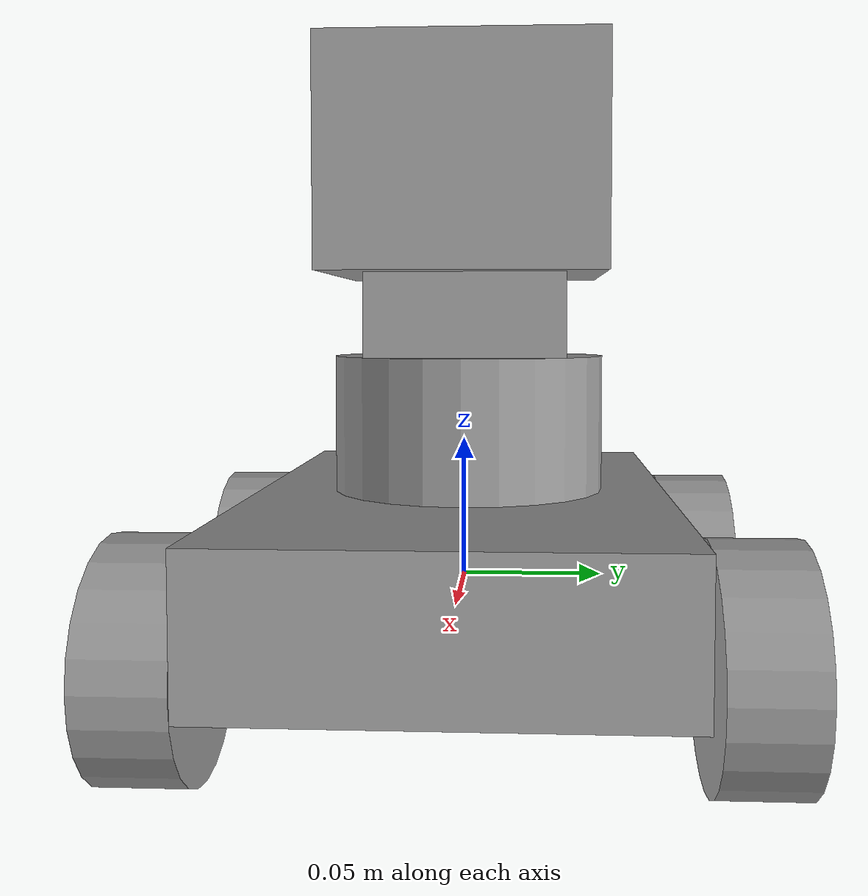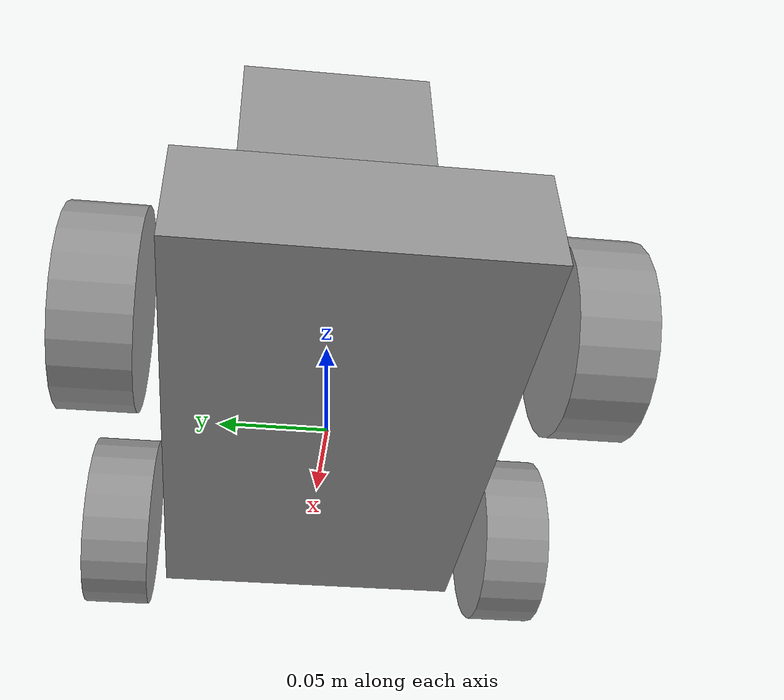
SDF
<?xml version='1.0'?>
<sdf version='1.5'>
  <model name='bfl_10'>
    <link name='link_0'>
      <inertial>
        <mass>1</mass>
        <inertia>
          <ixx>0.166667</ixx>
          <ixy>0</ixy>
          <ixz>0</ixz>
          <iyy>0.166667</iyy>
          <iyz>0</iyz>
          <izz>0.166667</izz>
        </inertia>
        <pose>0 0 0 0 -0 0</pose>
      </inertial>
      <pose>-0.011538 -0.000908 0.005 0 -0 0</pose>
      <gravity>1</gravity>
      <self_collide>0</self_collide>
      <kinematic>0</kinematic>
      <enable_wind>0</enable_wind>
      <visual name='visual'>
        <pose>0 0 0 0 -0 0</pose>
        <geometry>
          <box>
            <size>0.25 0.15 0.05</size>
          </box>
        </geometry>
        <material>
          <lighting>1</lighting>
          <script>
            <uri>file://media/materials/scripts/gazebo.material</uri>
            <name>Gazebo/Grey</name>
          </script>
          <shader type='pixel'>
            <normal_map>__default__</normal_map>
          </shader>
          <ambient>0.3 0.3 0.3 1</ambient>
          <diffuse>0.7 0.7 0.7 1</diffuse>
          <specular>0.01 0.01 0.01 1</specular>
          <emissive>0 0 0 1</emissive>
        </material>
        <transparency>0</transparency>
        <cast_shadows>1</cast_shadows>
      </visual>
      <collision name='collision'>
        <laser_retro>0</laser_retro>
        <max_contacts>10</max_contacts>
        <pose>0 0 0 0 -0 0</pose>
        <geometry>
          <box>
            <size>0.25 0.15 0.05</size>
          </box>
        </geometry>
        <surface>
          <friction>
            <ode>
              <mu>1</mu>
              <mu2>1</mu2>
              <fdir1>0 0 0</fdir1>
              <slip1>0</slip1>
              <slip2>0</slip2>
            </ode>
            <torsional>
              <coefficient>1</coefficient>
              <patch_radius>0</patch_radius>
              <surface_radius>0</surface_radius>
              <use_patch_radius>1</use_patch_radius>
              <ode>
                <slip>0</slip>
              </ode>
            </torsional>
          </friction>
          <bounce>
            <restitution_coefficient>0</restitution_coefficient>
            <threshold>1e+06</threshold>
          </bounce>
          <contact>
            <collide_without_contact>0</collide_without_contact>
            <collide_without_contact_bitmask>1</collide_without_contact_bitmask>
            <collide_bitmask>1</collide_bitmask>
            <ode>
              <soft_cfm>0</soft_cfm>
              <soft_erp>0.2</soft_erp>
              <kp>1e+13</kp>
              <kd>1</kd>
              <max_vel>0.01</max_vel>
              <min_depth>0</min_depth>
            </ode>
            <bullet>
              <split_impulse>1</split_impulse>
              <split_impulse_penetration_threshold>-0.01</split_impulse_penetration_threshold>
              <soft_cfm>0</soft_cfm>
              <soft_erp>0.2</soft_erp>
              <kp>1e+13</kp>
              <kd>1</kd>
            </bullet>
          </contact>
        </surface>
      </collision>
    </link>
    <link name='link_0_0'>
      <inertial>
        <mass>1</mass>
        <inertia>
          <ixx>0.166667</ixx>
          <ixy>0</ixy>
          <ixz>0</ixz>
          <iyy>0.166667</iyy>
          <iyz>0</iyz>
          <izz>0.166667</izz>
        </inertia>
        <pose>0 0 0 0 -0 0</pose>
      </inertial>
      <pose>-0.014088 0.00077 0.150001 1e-06 -2e-06 0.000295</pose>
      <gravity>1</gravity>
      <self_collide>0</self_collide>
      <kinematic>0</kinematic>
      <enable_wind>0</enable_wind>
      <visual name='visual'>
        <pose>0 0 0 0 -0 0</pose>
        <geometry>
          <box>
            <size>0.1 0.1 0.08</size>
          </box>
        </geometry>
        <material>
          <lighting>1</lighting>
          <script>
            <uri>file://media/materials/scripts/gazebo.material</uri>
            <name>Gazebo/Grey</name>
          </script>
          <shader type='pixel'>
            <normal_map>__default__</normal_map>
          </shader>
          <ambient>0.3 0.3 0.3 1</ambient>
          <diffuse>0.7 0.7 0.7 1</diffuse>
          <specular>0.01 0.01 0.01 1</specular>
          <emissive>0 0 0 1</emissive>
        </material>
        <transparency>0</transparency>
        <cast_shadows>1</cast_shadows>
      </visual>
      <collision name='collision'>
        <laser_retro>0</laser_retro>
        <max_contacts>10</max_contacts>
        <pose>0 0 0 0 -0 0</pose>
        <geometry>
          <box>
            <size>0.1 0.1 0.08</size>
          </box>
        </geometry>
        <surface>
          <friction>
            <ode>
              <mu>1</mu>
              <mu2>1</mu2>
              <fdir1>0 0 0</fdir1>
              <slip1>0</slip1>
              <slip2>0</slip2>
            </ode>
            <torsional>
              <coefficient>1</coefficient>
              <patch_radius>0</patch_radius>
              <surface_radius>0</surface_radius>
              <use_patch_radius>1</use_patch_radius>
              <ode>
                <slip>0</slip>
              </ode>
            </torsional>
          </friction>
          <bounce>
            <restitution_coefficient>0</restitution_coefficient>
            <threshold>1e+06</threshold>
          </bounce>
          <contact>
            <collide_without_contact>0</collide_without_contact>
            <collide_without_contact_bitmask>1</collide_without_contact_bitmask>
            <collide_bitmask>1</collide_bitmask>
            <ode>
              <soft_cfm>0</soft_cfm>
              <soft_erp>0.2</soft_erp>
              <kp>1e+13</kp>
              <kd>1</kd>
              <max_vel>0.01</max_vel>
              <min_depth>0</min_depth>
            </ode>
            <bullet>
              <split_impulse>1</split_impulse>
              <split_impulse_penetration_threshold>-0.01</split_impulse_penetration_threshold>
              <soft_cfm>0</soft_cfm>
              <soft_erp>0.2</soft_erp>
              <kp>1e+13</kp>
              <kd>1</kd>
            </bullet>
          </contact>
        </surface>
      </collision>
    </link>
    <link name='link_1'>
      <inertial>
        <mass>1</mass>
        <inertia>
          <ixx>0.145833</ixx>
          <ixy>0</ixy>
          <ixz>0</ixz>
          <iyy>0.145833</iyy>
          <iyz>0</iyz>
          <izz>0.125</izz>
        </inertia>
        <pose>0 0 0 0 -0 0</pose>
      </inertial>
      <pose>0.064351 -0.094184 -0.015 1.5708 -0 0</pose>
      <gravity>1</gravity>
      <self_collide>0</self_collide>
      <kinematic>0</kinematic>
      <enable_wind>0</enable_wind>
      <visual name='visual'>
        <pose>0 0 0 0 -0 0</pose>
        <geometry>
          <cylinder>
            <radius>0.04</radius>
            <length>0.03</length>
          </cylinder>
        </geometry>
        <material>
          <lighting>1</lighting>
          <script>
            <uri>file://media/materials/scripts/gazebo.material</uri>
            <name>Gazebo/Grey</name>
          </script>
          <shader type='pixel'>
            <normal_map>__default__</normal_map>
          </shader>
          <ambient>0.3 0.3 0.3 1</ambient>
          <diffuse>0.7 0.7 0.7 1</diffuse>
          <specular>0.01 0.01 0.01 1</specular>
          <emissive>0 0 0 1</emissive>
        </material>
        <transparency>0</transparency>
        <cast_shadows>1</cast_shadows>
      </visual>
      <collision name='collision'>
        <laser_retro>0</laser_retro>
        <max_contacts>10</max_contacts>
        <pose>0 0 0 0 -0 0</pose>
        <geometry>
          <cylinder>
            <radius>0.04</radius>
            <length>0.03</length>
          </cylinder>
        </geometry>
        <surface>
          <friction>
            <ode>
              <mu>1</mu>
              <mu2>1</mu2>
              <fdir1>0 0 0</fdir1>
              <slip1>0</slip1>
              <slip2>0</slip2>
            </ode>
            <torsional>
              <coefficient>1</coefficient>
              <patch_radius>0</patch_radius>
              <surface_radius>0</surface_radius>
              <use_patch_radius>1</use_patch_radius>
              <ode>
                <slip>0</slip>
              </ode>
            </torsional>
          </friction>
          <bounce>
            <restitution_coefficient>0</restitution_coefficient>
            <threshold>1e+06</threshold>
          </bounce>
          <contact>
            <collide_without_contact>0</collide_without_contact>
            <collide_without_contact_bitmask>1</collide_without_contact_bitmask>
            <collide_bitmask>1</collide_bitmask>
            <ode>
              <soft_cfm>0</soft_cfm>
              <soft_erp>0.2</soft_erp>
              <kp>1e+13</kp>
              <kd>1</kd>
              <max_vel>0.01</max_vel>
              <min_depth>0</min_depth>
            </ode>
            <bullet>
              <split_impulse>1</split_impulse>
              <split_impulse_penetration_threshold>-0.01</split_impulse_penetration_threshold>
              <soft_cfm>0</soft_cfm>
              <soft_erp>0.2</soft_erp>
              <kp>1e+13</kp>
              <kd>1</kd>
            </bullet>
          </contact>
        </surface>
      </collision>
    </link>
    <link name='link_1_0'>
      <inertial>
        <mass>1</mass>
        <inertia>
          <ixx>0.166667</ixx>
          <ixy>0</ixy>
          <ixz>0</ixz>
          <iyy>0.166667</iyy>
          <iyz>0</iyz>
          <izz>0.166667</izz>
        </inertia>
        <pose>0 0 0 0 -0 0</pose>
      </inertial>
      <pose>-0.01181 0.001312 0.094979 -1.5708 -4e-06 -1.5708</pose>
      <gravity>1</gravity>
      <self_collide>0</self_collide>
      <kinematic>0</kinematic>
      <enable_wind>0</enable_wind>
      <visual name='visual'>
        <pose>0 0 0 0 -0 0</pose>
        <geometry>
          <box>
            <size>0.07071 0.03 0.07071</size>
          </box>
        </geometry>
        <material>
          <lighting>1</lighting>
          <script>
            <uri>file://media/materials/scripts/gazebo.material</uri>
            <name>Gazebo/Grey</name>
          </script>
          <shader type='pixel'>
            <normal_map>__default__</normal_map>
          </shader>
          <ambient>0.3 0.3 0.3 1</ambient>
          <diffuse>0.7 0.7 0.7 1</diffuse>
          <specular>0.01 0.01 0.01 1</specular>
          <emissive>0 0 0 1</emissive>
        </material>
        <transparency>0</transparency>
        <cast_shadows>1</cast_shadows>
      </visual>
      <collision name='collision'>
        <laser_retro>0</laser_retro>
        <max_contacts>10</max_contacts>
        <pose>0 0 0 0 -0 0</pose>
        <geometry>
          <box>
            <size>0.07071 0.03 0.07071</size>
          </box>
        </geometry>
        <surface>
          <friction>
            <ode>
              <mu>1</mu>
              <mu2>1</mu2>
              <fdir1>0 0 0</fdir1>
              <slip1>0</slip1>
              <slip2>0</slip2>
            </ode>
            <torsional>
              <coefficient>1</coefficient>
              <patch_radius>0</patch_radius>
              <surface_radius>0</surface_radius>
              <use_patch_radius>1</use_patch_radius>
              <ode>
                <slip>0</slip>
              </ode>
            </torsional>
          </friction>
          <bounce>
            <restitution_coefficient>0</restitution_coefficient>
            <threshold>1e+06</threshold>
          </bounce>
          <contact>
            <collide_without_contact>0</collide_without_contact>
            <collide_without_contact_bitmask>1</collide_without_contact_bitmask>
            <collide_bitmask>1</collide_bitmask>
            <ode>
              <soft_cfm>0</soft_cfm>
              <soft_erp>0.2</soft_erp>
              <kp>1e+13</kp>
              <kd>1</kd>
              <max_vel>0.01</max_vel>
              <min_depth>0</min_depth>
            </ode>
            <bullet>
              <split_impulse>1</split_impulse>
              <split_impulse_penetration_threshold>-0.01</split_impulse_penetration_threshold>
              <soft_cfm>0</soft_cfm>
              <soft_erp>0.2</soft_erp>
              <kp>1e+13</kp>
              <kd>1</kd>
            </bullet>
          </contact>
        </surface>
      </collision>
    </link>
    <link name='link_1_clone'>
      <inertial>
        <mass>1</mass>
        <inertia>
          <ixx>0.145833</ixx>
          <ixy>0</ixy>
          <ixz>0</ixz>
          <iyy>0.145833</iyy>
          <iyz>0</iyz>
          <izz>0.125</izz>
        </inertia>
        <pose>0 0 0 0 -0 0</pose>
      </inertial>
      <pose>-0.091878 -0.094184 -0.015 1.5708 -0 0</pose>
      <gravity>1</gravity>
      <self_collide>0</self_collide>
      <kinematic>0</kinematic>
      <enable_wind>0</enable_wind>
      <visual name='visual'>
        <pose>0 0 0 0 -0 0</pose>
        <geometry>
          <cylinder>
            <radius>0.04</radius>
            <length>0.03</length>
          </cylinder>
        </geometry>
        <material>
          <lighting>1</lighting>
          <script>
            <uri>file://media/materials/scripts/gazebo.material</uri>
            <name>Gazebo/Grey</name>
          </script>
          <shader type='pixel'>
            <normal_map>__default__</normal_map>
          </shader>
          <ambient>0.3 0.3 0.3 1</ambient>
          <diffuse>0.7 0.7 0.7 1</diffuse>
          <specular>0.01 0.01 0.01 1</specular>
          <emissive>0 0 0 1</emissive>
        </material>
        <transparency>0</transparency>
        <cast_shadows>1</cast_shadows>
      </visual>
      <collision name='collision'>
        <laser_retro>0</laser_retro>
        <max_contacts>10</max_contacts>
        <pose>0 0 0 0 -0 0</pose>
        <geometry>
          <cylinder>
            <radius>0.04</radius>
            <length>0.03</length>
          </cylinder>
        </geometry>
        <surface>
          <friction>
            <ode>
              <mu>1</mu>
              <mu2>1</mu2>
              <fdir1>0 0 0</fdir1>
              <slip1>0</slip1>
              <slip2>0</slip2>
            </ode>
            <torsional>
              <coefficient>1</coefficient>
              <patch_radius>0</patch_radius>
              <surface_radius>0</surface_radius>
              <use_patch_radius>1</use_patch_radius>
              <ode>
                <slip>0</slip>
              </ode>
            </torsional>
          </friction>
          <bounce>
            <restitution_coefficient>0</restitution_coefficient>
            <threshold>1e+06</threshold>
          </bounce>
          <contact>
            <collide_without_contact>0</collide_without_contact>
            <collide_without_contact_bitmask>1</collide_without_contact_bitmask>
            <collide_bitmask>1</collide_bitmask>
            <ode>
              <soft_cfm>0</soft_cfm>
              <soft_erp>0.2</soft_erp>
              <kp>1e+13</kp>
              <kd>1</kd>
              <max_vel>0.01</max_vel>
              <min_depth>0</min_depth>
            </ode>
            <bullet>
              <split_impulse>1</split_impulse>
              <split_impulse_penetration_threshold>-0.01</split_impulse_penetration_threshold>
              <soft_cfm>0</soft_cfm>
              <soft_erp>0.2</soft_erp>
              <kp>1e+13</kp>
              <kd>1</kd>
            </bullet>
          </contact>
        </surface>
      </collision>
    </link>
    <link name='link_1_clone_0'>
      <inertial>
        <mass>1</mass>
        <inertia>
          <ixx>0.145833</ixx>
          <ixy>0</ixy>
          <ixz>0</ixz>
          <iyy>0.145833</iyy>
          <iyz>0</iyz>
          <izz>0.125</izz>
        </inertia>
        <pose>0 0 0 0 -0 0</pose>
      </inertial>
      <pose>0.064351 0.094148 -0.015 1.5708 -0 0</pose>
      <gravity>1</gravity>
      <self_collide>0</self_collide>
      <kinematic>0</kinematic>
      <enable_wind>0</enable_wind>
      <visual name='visual'>
        <pose>0 0 0 0 -0 0</pose>
        <geometry>
          <cylinder>
            <radius>0.04</radius>
            <length>0.03</length>
          </cylinder>
        </geometry>
        <material>
          <lighting>1</lighting>
          <script>
            <uri>file://media/materials/scripts/gazebo.material</uri>
            <name>Gazebo/Grey</name>
          </script>
          <shader type='pixel'>
            <normal_map>__default__</normal_map>
          </shader>
          <ambient>0.3 0.3 0.3 1</ambient>
          <diffuse>0.7 0.7 0.7 1</diffuse>
          <specular>0.01 0.01 0.01 1</specular>
          <emissive>0 0 0 1</emissive>
        </material>
        <transparency>0</transparency>
        <cast_shadows>1</cast_shadows>
      </visual>
      <collision name='collision'>
        <laser_retro>0</laser_retro>
        <max_contacts>10</max_contacts>
        <pose>0 0 0 0 -0 0</pose>
        <geometry>
          <cylinder>
            <radius>0.04</radius>
            <length>0.03</length>
          </cylinder>
        </geometry>
        <surface>
          <friction>
            <ode>
              <mu>1</mu>
              <mu2>1</mu2>
              <fdir1>0 0 0</fdir1>
              <slip1>0</slip1>
              <slip2>0</slip2>
            </ode>
            <torsional>
              <coefficient>1</coefficient>
              <patch_radius>0</patch_radius>
              <surface_radius>0</surface_radius>
              <use_patch_radius>1</use_patch_radius>
              <ode>
                <slip>0</slip>
              </ode>
            </torsional>
          </friction>
          <bounce>
            <restitution_coefficient>0</restitution_coefficient>
            <threshold>1e+06</threshold>
          </bounce>
          <contact>
            <collide_without_contact>0</collide_without_contact>
            <collide_without_contact_bitmask>1</collide_without_contact_bitmask>
            <collide_bitmask>1</collide_bitmask>
            <ode>
              <soft_cfm>0</soft_cfm>
              <soft_erp>0.2</soft_erp>
              <kp>1e+13</kp>
              <kd>1</kd>
              <max_vel>0.01</max_vel>
              <min_depth>0</min_depth>
            </ode>
            <bullet>
              <split_impulse>1</split_impulse>
              <split_impulse_penetration_threshold>-0.01</split_impulse_penetration_threshold>
              <soft_cfm>0</soft_cfm>
              <soft_erp>0.2</soft_erp>
              <kp>1e+13</kp>
              <kd>1</kd>
            </bullet>
          </contact>
        </surface>
      </collision>
    </link>
    <link name='link_1_clone_1'>
      <inertial>
        <mass>1</mass>
        <inertia>
          <ixx>0.145833</ixx>
          <ixy>0</ixy>
          <ixz>0</ixz>
          <iyy>0.145833</iyy>
          <iyz>0</iyz>
          <izz>0.125</izz>
        </inertia>
        <pose>0 0 0 0 -0 0</pose>
      </inertial>
      <pose>-0.091878 0.094148 -0.015 1.5708 -0 0</pose>
      <gravity>1</gravity>
      <self_collide>0</self_collide>
      <kinematic>0</kinematic>
      <enable_wind>0</enable_wind>
      <visual name='visual'>
        <pose>0 0 0 0 -0 0</pose>
        <geometry>
          <cylinder>
            <radius>0.04</radius>
            <length>0.03</length>
          </cylinder>
        </geometry>
        <material>
          <lighting>1</lighting>
          <script>
            <uri>file://media/materials/scripts/gazebo.material</uri>
            <name>Gazebo/Grey</name>
          </script>
          <shader type='pixel'>
            <normal_map>__default__</normal_map>
          </shader>
          <ambient>0.3 0.3 0.3 1</ambient>
          <diffuse>0.7 0.7 0.7 1</diffuse>
          <specular>0.01 0.01 0.01 1</specular>
          <emissive>0 0 0 1</emissive>
        </material>
        <transparency>0</transparency>
        <cast_shadows>1</cast_shadows>
      </visual>
      <collision name='collision'>
        <laser_retro>0</laser_retro>
        <max_contacts>10</max_contacts>
        <pose>0 0 0 0 -0 0</pose>
        <geometry>
          <cylinder>
            <radius>0.04</radius>
            <length>0.03</length>
          </cylinder>
        </geometry>
        <surface>
          <friction>
            <ode>
              <mu>1</mu>
              <mu2>1</mu2>
              <fdir1>0 0 0</fdir1>
              <slip1>0</slip1>
              <slip2>0</slip2>
            </ode>
            <torsional>
              <coefficient>1</coefficient>
              <patch_radius>0</patch_radius>
              <surface_radius>0</surface_radius>
              <use_patch_radius>1</use_patch_radius>
              <ode>
                <slip>0</slip>
              </ode>
            </torsional>
          </friction>
          <bounce>
            <restitution_coefficient>0</restitution_coefficient>
            <threshold>1e+06</threshold>
          </bounce>
          <contact>
            <collide_without_contact>0</collide_without_contact>
            <collide_without_contact_bitmask>1</collide_without_contact_bitmask>
            <collide_bitmask>1</collide_bitmask>
            <ode>
              <soft_cfm>0</soft_cfm>
              <soft_erp>0.2</soft_erp>
              <kp>1e+13</kp>
              <kd>1</kd>
              <max_vel>0.01</max_vel>
              <min_depth>0</min_depth>
            </ode>
            <bullet>
              <split_impulse>1</split_impulse>
              <split_impulse_penetration_threshold>-0.01</split_impulse_penetration_threshold>
              <soft_cfm>0</soft_cfm>
              <soft_erp>0.2</soft_erp>
              <kp>1e+13</kp>
              <kd>1</kd>
            </bullet>
          </contact>
        </surface>
      </collision>
    </link>
    <link name='link_2'>
      <inertial>
        <mass>1</mass>
        <inertia>
          <ixx>0.145833</ixx>
          <ixy>0</ixy>
          <ixz>0</ixz>
          <iyy>0.145833</iyy>
          <iyz>0</iyz>
          <izz>0.125</izz>
        </inertia>
        <pose>0 0 0 0 -0 0</pose>
      </inertial>
      <pose>-0.01235 0.000979 0.055 0 -0 0</pose>
      <gravity>1</gravity>
      <self_collide>0</self_collide>
      <kinematic>0</kinematic>
      <enable_wind>0</enable_wind>
      <visual name='visual'>
        <pose>0 0 0 0 -0 0</pose>
        <geometry>
          <cylinder>
            <radius>0.05</radius>
            <length>0.05</length>
          </cylinder>
        </geometry>
        <material>
          <lighting>1</lighting>
          <script>
            <uri>file://media/materials/scripts/gazebo.material</uri>
            <name>Gazebo/Grey</name>
          </script>
          <shader type='pixel'>
            <normal_map>__default__</normal_map>
          </shader>
          <ambient>0.3 0.3 0.3 1</ambient>
          <diffuse>0.7 0.7 0.7 1</diffuse>
          <specular>0.01 0.01 0.01 1</specular>
          <emissive>0 0 0 1</emissive>
        </material>
        <transparency>0</transparency>
        <cast_shadows>1</cast_shadows>
      </visual>
      <collision name='collision'>
        <laser_retro>0</laser_retro>
        <max_contacts>10</max_contacts>
        <pose>0 0 0 0 -0 0</pose>
        <geometry>
          <cylinder>
            <radius>0.05</radius>
            <length>0.05</length>
          </cylinder>
        </geometry>
        <surface>
          <friction>
            <ode>
              <mu>1</mu>
              <mu2>1</mu2>
              <fdir1>0 0 0</fdir1>
              <slip1>0</slip1>
              <slip2>0</slip2>
            </ode>
            <torsional>
              <coefficient>1</coefficient>
              <patch_radius>0</patch_radius>
              <surface_radius>0</surface_radius>
              <use_patch_radius>1</use_patch_radius>
              <ode>
                <slip>0</slip>
              </ode>
            </torsional>
          </friction>
          <bounce>
            <restitution_coefficient>0</restitution_coefficient>
            <threshold>1e+06</threshold>
          </bounce>
          <contact>
            <collide_without_contact>0</collide_without_contact>
            <collide_without_contact_bitmask>1</collide_without_contact_bitmask>
            <collide_bitmask>1</collide_bitmask>
            <ode>
              <soft_cfm>0</soft_cfm>
              <soft_erp>0.2</soft_erp>
              <kp>1e+13</kp>
              <kd>1</kd>
              <max_vel>0.01</max_vel>
              <min_depth>0</min_depth>
            </ode>
            <bullet>
              <split_impulse>1</split_impulse>
              <split_impulse_penetration_threshold>-0.01</split_impulse_penetration_threshold>
              <soft_cfm>0</soft_cfm>
              <soft_erp>0.2</soft_erp>
              <kp>1e+13</kp>
              <kd>1</kd>
            </bullet>
          </contact>
        </surface>
      </collision>
    </link>
    <joint name='link_0_JOINT_0_0' type='fixed'>
      <parent>link_0</parent>
      <child>link_0_0</child>
      <pose>0 0 0 0 -0 0</pose>
      <physics>
        <ode>
          <limit>
            <cfm>0</cfm>
            <erp>0.2</erp>
          </limit>
          <suspension>
            <cfm>0</cfm>
            <erp>0.2</erp>
          </suspension>
        </ode>
      </physics>
    </joint>
    <joint name='link_0_JOINT_0' type='revolute'>
      <parent>link_0</parent>
      <child>link_1</child>
      <pose>0 0 0 0 -0 0</pose>
      <axis>
        <xyz>0 0 1</xyz>
        <limit>
          <lower>-1.79769e+308</lower>
          <upper>1.79769e+308</upper>
          <effort>-1</effort>
          <velocity>-1</velocity>
        </limit>
        <dynamics>
          <spring_reference>0</spring_reference>
          <spring_stiffness>0</spring_stiffness>
          <damping>0</damping>
          <friction>0</friction>
        </dynamics>
      </axis>
      <physics>
        <ode>
          <limit>
            <cfm>0</cfm>
            <erp>0.2</erp>
          </limit>
          <suspension>
            <cfm>0</cfm>
            <erp>0.2</erp>
          </suspension>
        </ode>
      </physics>
    </joint>
    <joint name='link_0_JOINT_1_0' type='fixed'>
      <parent>link_0</parent>
      <child>link_1_0</child>
      <pose>0 0 0 0 -0 0</pose>
      <physics>
        <ode>
          <limit>
            <cfm>0</cfm>
            <erp>0.2</erp>
          </limit>
          <suspension>
            <cfm>0</cfm>
            <erp>0.2</erp>
          </suspension>
        </ode>
      </physics>
    </joint>
    <joint name='link_0_JOINT_1' type='revolute'>
      <parent>link_0</parent>
      <child>link_1_clone_0</child>
      <pose>0 0 0 0 -0 0</pose>
      <axis>
        <xyz>0 0 1</xyz>
        <limit>
          <lower>-1.79769e+308</lower>
          <upper>1.79769e+308</upper>
          <effort>-1</effort>
          <velocity>-1</velocity>
        </limit>
        <dynamics>
          <spring_reference>0</spring_reference>
          <spring_stiffness>0</spring_stiffness>
          <damping>0</damping>
          <friction>0</friction>
        </dynamics>
      </axis>
      <physics>
        <ode>
          <limit>
            <cfm>0</cfm>
            <erp>0.2</erp>
          </limit>
          <suspension>
            <cfm>0</cfm>
            <erp>0.2</erp>
          </suspension>
        </ode>
      </physics>
    </joint>
    <joint name='link_0_JOINT_2' type='revolute'>
      <parent>link_0</parent>
      <child>link_1_clone_1</child>
      <pose>0 0 0 0 -0 0</pose>
      <axis>
        <xyz>0 0 1</xyz>
        <limit>
          <lower>-1.79769e+308</lower>
          <upper>1.79769e+308</upper>
          <effort>-1</effort>
          <velocity>-1</velocity>
        </limit>
        <dynamics>
          <spring_reference>0</spring_reference>
          <spring_stiffness>0</spring_stiffness>
          <damping>0</damping>
          <friction>0</friction>
        </dynamics>
      </axis>
      <physics>
        <ode>
          <limit>
            <cfm>0</cfm>
            <erp>0.2</erp>
          </limit>
          <suspension>
            <cfm>0</cfm>
            <erp>0.2</erp>
          </suspension>
        </ode>
      </physics>
    </joint>
    <joint name='link_0_JOINT_3' type='revolute'>
      <parent>link_0</parent>
      <child>link_1_clone</child>
      <pose>0 0 0 0 -0 0</pose>
      <axis>
        <xyz>0 0 1</xyz>
        <limit>
          <lower>-1.79769e+308</lower>
          <upper>1.79769e+308</upper>
          <effort>-1</effort>
          <velocity>-1</velocity>
        </limit>
        <dynamics>
          <spring_reference>0</spring_reference>
          <spring_stiffness>0</spring_stiffness>
          <damping>0</damping>
          <friction>0</friction>
        </dynamics>
      </axis>
      <physics>
        <ode>
          <limit>
            <cfm>0</cfm>
            <erp>0.2</erp>
          </limit>
          <suspension>
            <cfm>0</cfm>
            <erp>0.2</erp>
          </suspension>
        </ode>
      </physics>
    </joint>
    <joint name='link_0_JOINT_4' type='fixed'>
      <parent>link_0</parent>
      <child>link_2</child>
      <pose>0 0 0 0 -0 0</pose>
      <physics>
        <ode>
          <limit>
            <cfm>0</cfm>
            <erp>0.2</erp>
          </limit>
          <suspension>
            <cfm>0</cfm>
            <erp>0.2</erp>
          </suspension>
        </ode>
      </physics>
    </joint>
    <static>0</static>
    <allow_auto_disable>1</allow_auto_disable>
  </model>
</sdf>
